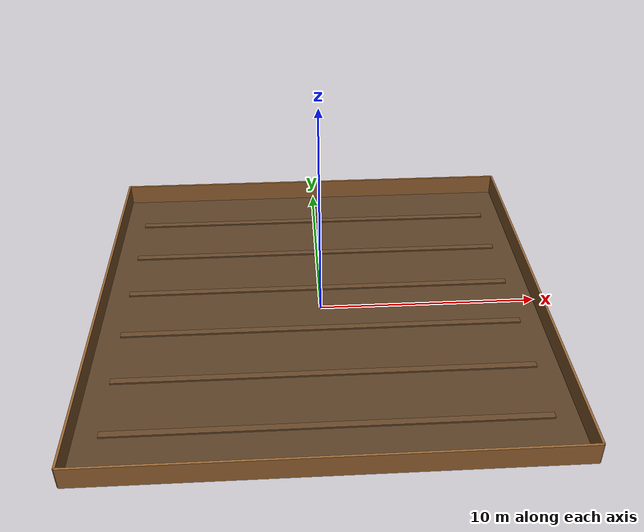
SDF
<?xml version="1.0"?>
<!--
  farm_field.sdf
  農地シミュレーションワールド (Gazebo Harmonic用)

  フィールド構成:
    - 20m × 20m 農地地面
    - 複数本の畝 (うね)
    - 外周フェンス (境界)
-->
<sdf version="1.9">
  <world name="farm_field">

    <!-- ======== Gazebo Harmonicシステムプラグイン ======== -->
    <plugin filename="gz-sim-physics-system"
            name="gz::sim::systems::Physics"/>
    <plugin filename="gz-sim-user-commands-system"
            name="gz::sim::systems::UserCommands"/>
    <plugin filename="gz-sim-scene-broadcaster-system"
            name="gz::sim::systems::SceneBroadcaster"/>
    <!-- センサレンダリング (LiDAR・カメラに必須) -->
    <plugin filename="gz-sim-sensors-system"
            name="gz::sim::systems::Sensors">
      <render_engine>ogre2</render_engine>
    </plugin>
    <!-- IMU -->
    <plugin filename="gz-sim-imu-system"
            name="gz::sim::systems::Imu"/>
    <!-- 接触センサ -->
    <plugin filename="gz-sim-contact-system"
            name="gz::sim::systems::Contact"/>

    <!-- ======== 物理設定 ======== -->
    <physics name="1ms" type="ignored">
      <max_step_size>0.001</max_step_size>
      <real_time_factor>1.0</real_time_factor>
      <real_time_update_rate>1000</real_time_update_rate>
    </physics>

    <!-- ======== 照明 ======== -->
    <light name="sun" type="directional">
      <cast_shadows>true</cast_shadows>
      <pose>0 0 20 0 0 0</pose>
      <diffuse>0.85 0.85 0.85 1</diffuse>
      <specular>0.2 0.2 0.2 1</specular>
      <attenuation>
        <range>1000</range>
        <constant>0.9</constant>
        <linear>0.01</linear>
        <quadratic>0.001</quadratic>
      </attenuation>
      <direction>-0.5 0.1 -0.9</direction>
    </light>

    <!-- 環境光はGazebo HarmonicではMinimalSceneプラグインで設定 (type="ambient"は無効) -->

    <!-- ======== 農地地面 (20m x 20m) ======== -->
    <model name="farm_ground">
      <static>true</static>
      <link name="ground_link">
        <collision name="ground_collision">
          <geometry>
            <plane>
              <normal>0 0 1</normal>
              <size>20 20</size>
            </plane>
          </geometry>
          <surface>
            <friction>
              <ode>
                <mu>0.8</mu>
                <mu2>0.8</mu2>
              </ode>
            </friction>
          </surface>
        </collision>
        <visual name="ground_visual">
          <geometry>
            <plane>
              <normal>0 0 1</normal>
              <size>20 20</size>
            </plane>
          </geometry>
          <material>
            <ambient>0.25 0.18 0.10 1</ambient>
            <diffuse>0.35 0.25 0.15 1</diffuse>
          </material>
        </visual>
      </link>
    </model>

    <!-- ======== 畝 (うね) x 6列 ======== -->
    <!-- 畝: Y方向に並ぶ幅0.3m・高さ0.1mの土盛り -->
    <model name="furrow_row_1">
      <static>true</static>
      <pose>0 -7.5 0 0 0 0</pose>
      <link name="furrow">
        <collision name="c"><geometry><box><size>18 0.3 0.1</size></box></geometry></collision>
        <visual name="v">
          <geometry><box><size>18 0.3 0.1</size></box></geometry>
          <material><ambient>0.30 0.20 0.12 1</ambient><diffuse>0.40 0.28 0.16 1</diffuse></material>
        </visual>
      </link>
    </model>
    <model name="furrow_row_2">
      <static>true</static>
      <pose>0 -4.5 0 0 0 0</pose>
      <link name="furrow">
        <collision name="c"><geometry><box><size>18 0.3 0.1</size></box></geometry></collision>
        <visual name="v">
          <geometry><box><size>18 0.3 0.1</size></box></geometry>
          <material><ambient>0.30 0.20 0.12 1</ambient><diffuse>0.40 0.28 0.16 1</diffuse></material>
        </visual>
      </link>
    </model>
    <model name="furrow_row_3">
      <static>true</static>
      <pose>0 -1.5 0 0 0 0</pose>
      <link name="furrow">
        <collision name="c"><geometry><box><size>18 0.3 0.1</size></box></geometry></collision>
        <visual name="v">
          <geometry><box><size>18 0.3 0.1</size></box></geometry>
          <material><ambient>0.30 0.20 0.12 1</ambient><diffuse>0.40 0.28 0.16 1</diffuse></material>
        </visual>
      </link>
    </model>
    <model name="furrow_row_4">
      <static>true</static>
      <pose>0 1.5 0 0 0 0</pose>
      <link name="furrow">
        <collision name="c"><geometry><box><size>18 0.3 0.1</size></box></geometry></collision>
        <visual name="v">
          <geometry><box><size>18 0.3 0.1</size></box></geometry>
          <material><ambient>0.30 0.20 0.12 1</ambient><diffuse>0.40 0.28 0.16 1</diffuse></material>
        </visual>
      </link>
    </model>
    <model name="furrow_row_5">
      <static>true</static>
      <pose>0 4.5 0 0 0 0</pose>
      <link name="furrow">
        <collision name="c"><geometry><box><size>18 0.3 0.1</size></box></geometry></collision>
        <visual name="v">
          <geometry><box><size>18 0.3 0.1</size></box></geometry>
          <material><ambient>0.30 0.20 0.12 1</ambient><diffuse>0.40 0.28 0.16 1</diffuse></material>
        </visual>
      </link>
    </model>
    <model name="furrow_row_6">
      <static>true</static>
      <pose>0 7.5 0 0 0 0</pose>
      <link name="furrow">
        <collision name="c"><geometry><box><size>18 0.3 0.1</size></box></geometry></collision>
        <visual name="v">
          <geometry><box><size>18 0.3 0.1</size></box></geometry>
          <material><ambient>0.30 0.20 0.12 1</ambient><diffuse>0.40 0.28 0.16 1</diffuse></material>
        </visual>
      </link>
    </model>

    <!-- ======== 外周フェンス ======== -->
    <model name="fence_north">
      <static>true</static>
      <pose>0 10 0.5 0 0 0</pose>
      <link name="fence">
        <collision name="c"><geometry><box><size>20 0.1 1.0</size></box></geometry></collision>
        <visual name="v">
          <geometry><box><size>20 0.1 1.0</size></box></geometry>
          <material><ambient>0.6 0.4 0.2 1</ambient></material>
        </visual>
      </link>
    </model>
    <model name="fence_south">
      <static>true</static>
      <pose>0 -10 0.5 0 0 0</pose>
      <link name="fence">
        <collision name="c"><geometry><box><size>20 0.1 1.0</size></box></geometry></collision>
        <visual name="v">
          <geometry><box><size>20 0.1 1.0</size></box></geometry>
          <material><ambient>0.6 0.4 0.2 1</ambient></material>
        </visual>
      </link>
    </model>
    <model name="fence_east">
      <static>true</static>
      <pose>10 0 0.5 0 0 0</pose>
      <link name="fence">
        <collision name="c"><geometry><box><size>0.1 20 1.0</size></box></geometry></collision>
        <visual name="v">
          <geometry><box><size>0.1 20 1.0</size></box></geometry>
          <material><ambient>0.6 0.4 0.2 1</ambient></material>
        </visual>
      </link>
    </model>
    <model name="fence_west">
      <static>true</static>
      <pose>-10 0 0.5 0 0 0</pose>
      <link name="fence">
        <collision name="c"><geometry><box><size>0.1 20 1.0</size></box></geometry></collision>
        <visual name="v">
          <geometry><box><size>0.1 20 1.0</size></box></geometry>
          <material><ambient>0.6 0.4 0.2 1</ambient></material>
        </visual>
      </link>
    </model>

    <!-- ======== GUIカメラ初期視点 ======== -->
    <gui fullscreen="0">
      <plugin filename="MinimalScene" name="3D View">
        <gz-gui>
          <title>3D View</title>
          <property type="bool" key="showTitleBar">false</property>
        </gz-gui>
        <engine>ogre2</engine>
        <scene>scene</scene>
        <ambient_light>0.4 0.4 0.4</ambient_light>
        <background_color>0.5 0.7 0.9</background_color>
        <camera_pose>-15 0 12 0 0.7 0</camera_pose>
      </plugin>
      <plugin filename="EntityContextMenuPlugin" name="Entity context menu"/>
      <plugin filename="GzSceneManager" name="Scene Manager"/>
      <plugin filename="InteractiveViewControl" name="Interactive view control"/>
      <plugin filename="TransformControl" name="Transform control"/>
      <plugin filename="Shapes" name="Shapes"/>
      <plugin filename="KeyPublisher" name="Key publisher"/>
    </gui>

  </world>
</sdf>
